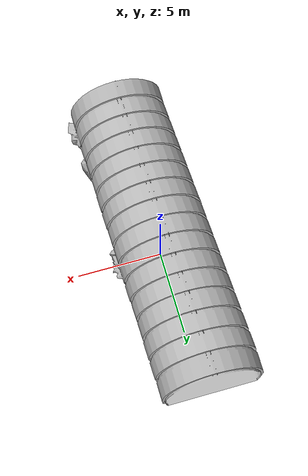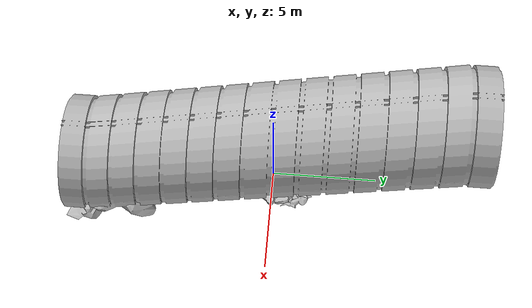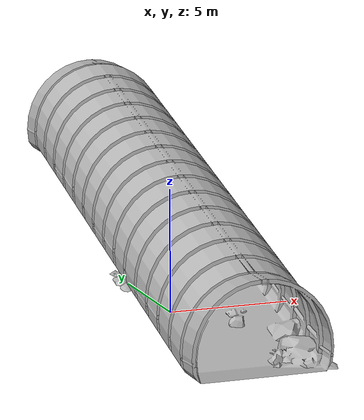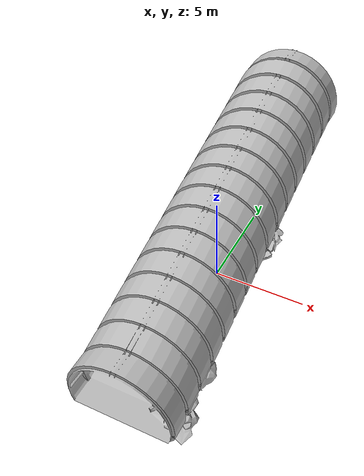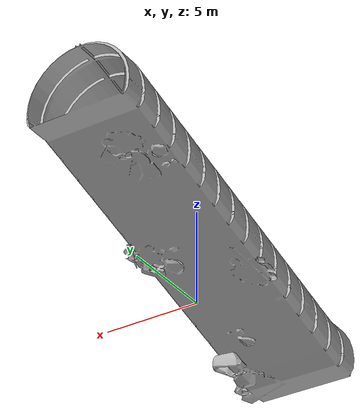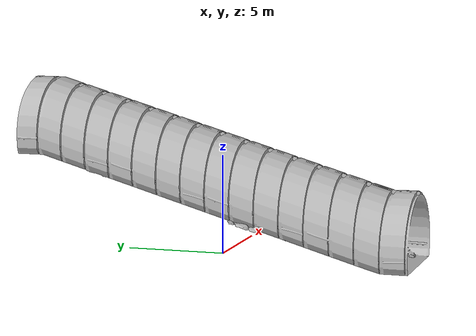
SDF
<?xml version="1.0" ?>
<sdf version="1.6">
  <model name="rough_tunnel_tile_ramp">
    <static>true</static>
    <link name="link">
      <collision name="collision">
        <geometry>
          <mesh>
            <uri>model://rough_tunnel_tile_ramp/meshes/ElevationChange_Collider.DAE</uri>
          </mesh>
        </geometry>
      </collision>
      <collision name="collision_ground">
        <geometry>
          <box>
            <size>5 20 0.001</size>
          </box>
        </geometry>
      </collision>
      <visual name="visual">
        <geometry>
          <mesh>
            <uri>model://rough_tunnel_tile_ramp/meshes/ElevationChange.DAE</uri>
          </mesh>
        </geometry>
      </visual>
    </link>
  </model>
</sdf>
